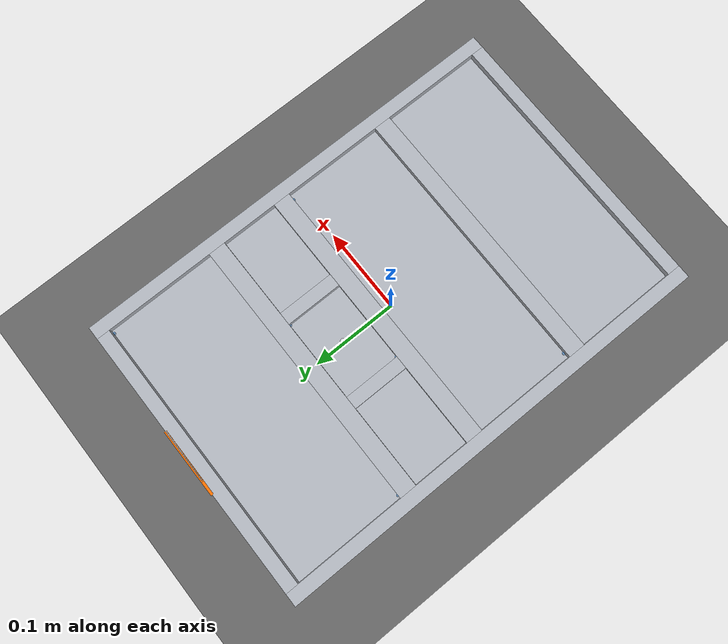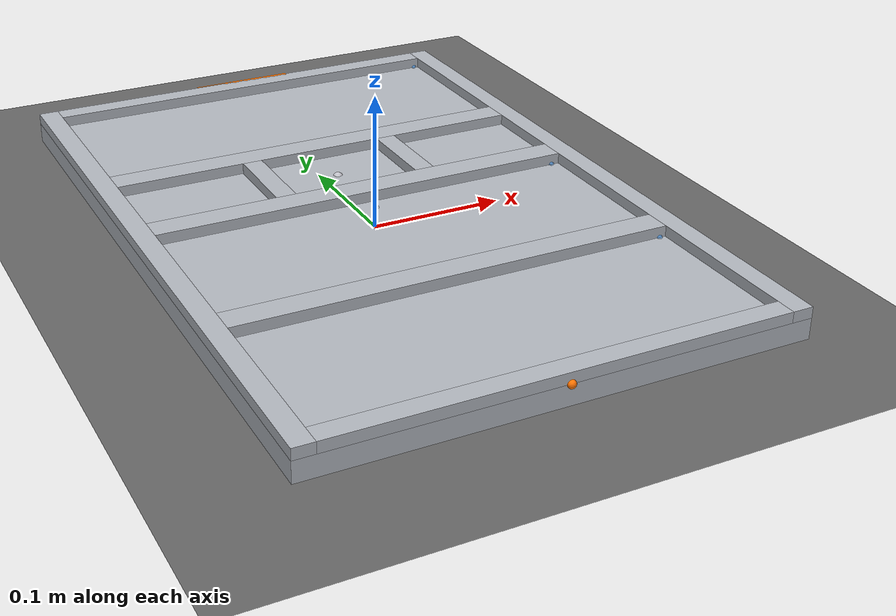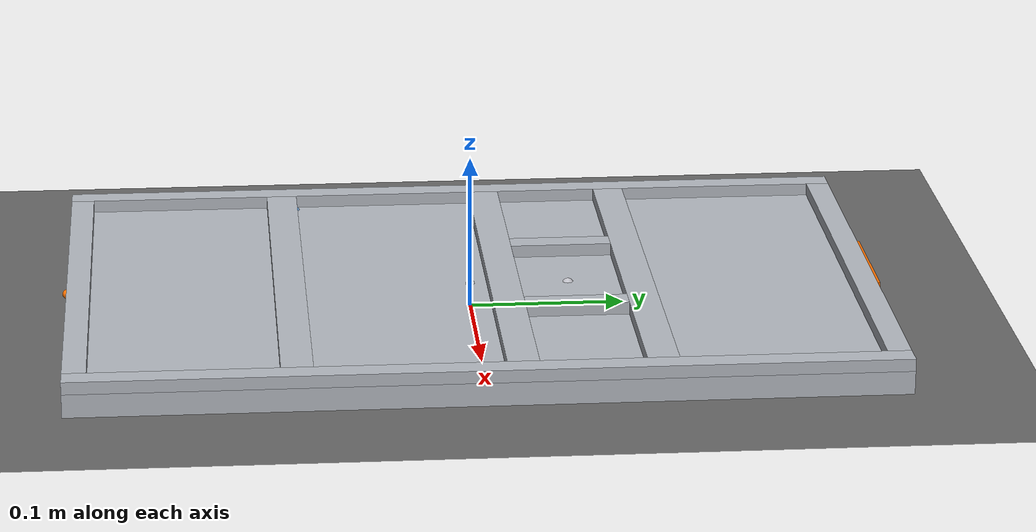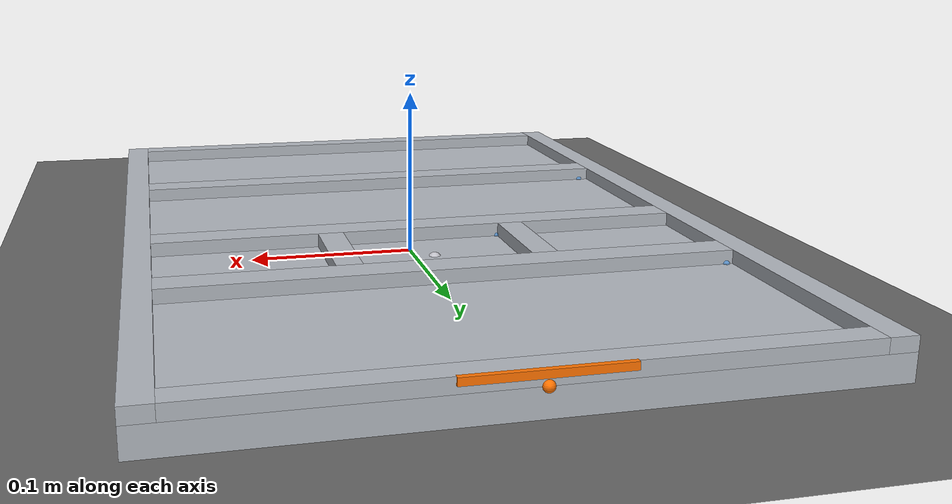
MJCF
<mujoco model="keyboard_kit_tray">

  <compiler angle="radian" autolimits="true"/>

  <option gravity="0 0 -9.81" timestep="0.002"/>

  <asset>
    <!-- Brushed aluminium tray body -->
    <material name="tray_alu"
              rgba="0.70 0.72 0.75 1"
              specular="0.7"
              shininess="0.5"
              reflectance="0.25"/>

    <!-- Foam pocket lining — dark charcoal, matte -->
    <material name="tray_foam"
              rgba="0.22 0.22 0.24 1"
              specular="0.05"
              shininess="0.05"
              reflectance="0.01"/>

    <!-- Tray ID tag — orange stripe at leading edge -->
    <material name="tray_id_tag"
              rgba="1.0 0.45 0.0 1"
              specular="0.1"
              shininess="0.1"/>
  </asset>

  <worldbody>

    <geom name="ground" type="plane" size="1 1 0.1"
          pos="0 0 0"
          friction="0.8 0.005 0.0001"
          rgba="0.4 0.4 0.4 1"/>

    <body name="kit_tray" pos="0 0 0.015">

      <freejoint name="kit_tray_free"/>

      <inertial pos="0 0 -0.0075"
                mass="3.5"
                diaginertia="5.0e-2 1.2e-1 1.5e-1"/>

      <geom name="base_slab"
            type="box"
            size="0.175 0.260 0.0075"
            pos="0 0 -0.0075"
            material="tray_alu"
            friction="0.8 0.005 0.0001"
            condim="4"
            priority="1"/>

      <!-- Left outer wall (−X) -->
      <geom name="wall_left"
            type="box"
            size="0.0075 0.260 0.004"
            pos="-0.1675 0 0.004"
            material="tray_alu"
            contype="0" conaffinity="0"/>

      <!-- Right outer wall (+X) -->
      <geom name="wall_right"
            type="box"
            size="0.0075 0.260 0.004"
            pos="0.1675 0 0.004"
            material="tray_alu"
            contype="0" conaffinity="0"/>

      <!-- Top outer wall (+Y, leading edge — EPDM side) -->
      <geom name="wall_top"
            type="box"
            size="0.1600 0.0075 0.004"
            pos="0 0.2525 0.004"
            material="tray_alu"
            contype="0" conaffinity="0"/>

      <!-- Bottom outer wall (−Y, trailing edge — Aluminum Plate side) -->
      <geom name="wall_bottom"
            type="box"
            size="0.1600 0.0075 0.004"
            pos="0 -0.2525 0.004"
            material="tray_alu"
            contype="0" conaffinity="0"/>

      <!-- Divider 1: between EPDM and Battery -->
      <geom name="divider_1"
            type="box"
            size="0.1600 0.010 0.004"
            pos="0 0.10670 0.004"
            material="tray_alu"
            contype="0" conaffinity="0"/>

      <!-- Divider 2: between Battery and PCB -->
      <geom name="divider_2"
            type="box"
            size="0.1600 0.010 0.004"
            pos="0 0.02070 0.004"
            material="tray_alu"
            contype="0" conaffinity="0"/>

      <!-- Divider 3: between PCB and Aluminum Plate -->
      <geom name="divider_3"
            type="box"
            size="0.1600 0.010 0.004"
            pos="0 -0.11730 0.004"
            material="tray_alu"
            contype="0" conaffinity="0"/>

      <!-- Battery lateral stop: Left (−X) -->
      <geom name="battery_stop_left"
            type="box"
            size="0.0075 0.0330 0.004"
            pos="-0.0555 0.06370 0.004"
            material="tray_alu"
            contype="0" conaffinity="0"/>

      <!-- Battery lateral stop: Right (+X) -->
      <geom name="battery_stop_right"
            type="box"
            size="0.0075 0.0330 0.004"
            pos="0.0555 0.06370 0.004"
            material="tray_alu"
            contype="0" conaffinity="0"/>

      <!-- EPDM foam pocket floor -->
      <!-- half: 0.1564 (X) × 0.06415 (Y), center Y = +0.18085 -->
      <geom name="pocket_floor_epdm"
            type="box"
            size="0.1564 0.06415 0.0015"
            pos="0 0.18085 -0.0065"
            material="tray_foam"
            contype="0" conaffinity="0"/>

      <!-- Battery pocket floor -->
      <!-- half: 0.0480 (X) × 0.0330 (Y), center Y = +0.06370 -->
      <geom name="pocket_floor_battery"
            type="box"
            size="0.0480 0.0330 0.0015"
            pos="0 0.06370 -0.0065"
            material="tray_foam"
            contype="0" conaffinity="0"/>

      <!-- PCB pocket floor -->
      <!-- half: 0.1540 (X) × 0.0590 (Y), center Y = −0.04830 -->
      <geom name="pocket_floor_pcb"
            type="box"
            size="0.1540 0.0590 0.0015"
            pos="0 -0.04830 -0.0065"
            material="tray_foam"
            contype="0" conaffinity="0"/>

      <!-- Aluminum plate pocket floor -->
      <!-- half: 0.1554 (X) × 0.06015 (Y), center Y = −0.18745 -->
      <geom name="pocket_floor_plate"
            type="box"
            size="0.1554 0.06015 0.0015"
            pos="0 -0.18745 -0.0065"
            material="tray_foam"
            contype="0" conaffinity="0"/>

      <geom name="tray_id_stripe"
            type="box"
            size="0.040 0.0015 0.002"
            pos="0 0.2600 0.006"
            material="tray_id_tag"
            contype="0" conaffinity="0"/>

      <!-- ══════════════════════════════════════════════════════════════
           REGISTRATION SITES
           ══════════════════════════════════════════════════════════════ -->

      <!-- Tray center reference -->
      <site name="tray_center"
            type="sphere" size="0.003"
            pos="0 0 0"
            rgba="1 1 1 0.5"/>

      <site name="pick_epdm"
            type="sphere" size="0.004"
            pos="0 0.18085 -0.00425"
            rgba="0.18 0.18 0.20 0.9"/>

      <site name="pick_battery"
            type="sphere" size="0.004"
            pos="0 0.06370 -0.002"
            rgba="0.75 0.75 0.78 0.9"/>

      <site name="pick_pcb"
            type="sphere" size="0.004"
            pos="0 -0.04830 -0.0042"
            rgba="0.08 0.35 0.08 0.9"/>

      <site name="pick_plate"
            type="sphere" size="0.004"
            pos="0 -0.18745 -0.00425"
            rgba="0.75 0.75 0.78 0.9"/>

      <!-- Tray leading edge center — vision system / stop pin reference -->
      <site name="tray_leading_edge"
            type="sphere" size="0.003"
            pos="0 0.260 0"
            rgba="1 0.45 0 0.9"/>

      <!-- Tray trailing edge center — feeder stopper engagement point -->
      <site name="tray_trailing_edge"
            type="sphere" size="0.003"
            pos="0 -0.260 0"
            rgba="1 0.45 0 0.9"/>

      <!-- Pocket corner sites — visual verification helpers -->
      <!-- EPDM cutout corners -->
      <site name="epdm_FL" type="sphere" size="0.002"
            pos="-0.1564 0.11670 0" rgba="0.2 0.6 1 0.5"/>
      <site name="epdm_RR" type="sphere" size="0.002"
            pos=" 0.1564 0.24500 0" rgba="0.2 0.6 1 0.5"/>

      <!-- Battery cutout corners -->
      <site name="battery_FL" type="sphere" size="0.002"
            pos="-0.0480 0.03070 0" rgba="0.2 0.6 1 0.5"/>
      <site name="battery_RR" type="sphere" size="0.002"
            pos=" 0.0480 0.09670 0" rgba="0.2 0.6 1 0.5"/>

      <!-- PCB cutout corners -->
      <site name="pcb_FL" type="sphere" size="0.002"
            pos="-0.1540 -0.10730 0" rgba="0.2 0.6 1 0.5"/>
      <site name="pcb_RR" type="sphere" size="0.002"
            pos=" 0.1540  0.01070 0" rgba="0.2 0.6 1 0.5"/>

      <!-- Plate cutout corners -->
      <site name="plate_FL" type="sphere" size="0.002"
            pos="-0.1554 -0.24760 0" rgba="0.2 0.6 1 0.5"/>
      <site name="plate_RR" type="sphere" size="0.002"
            pos=" 0.1554 -0.12730 0" rgba="0.2 0.6 1 0.5"/>

    </body>

  </worldbody>

</mujoco>
